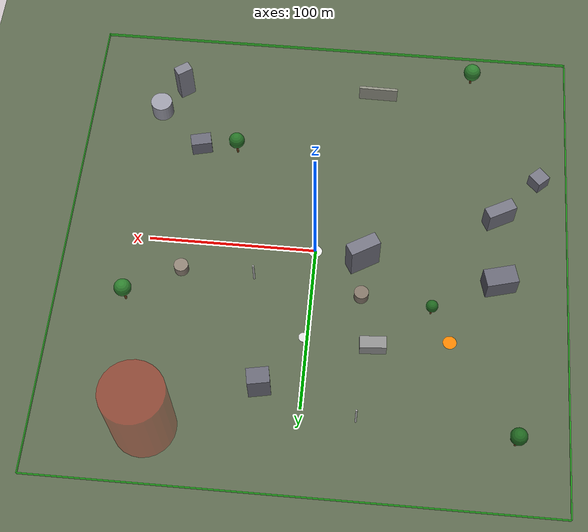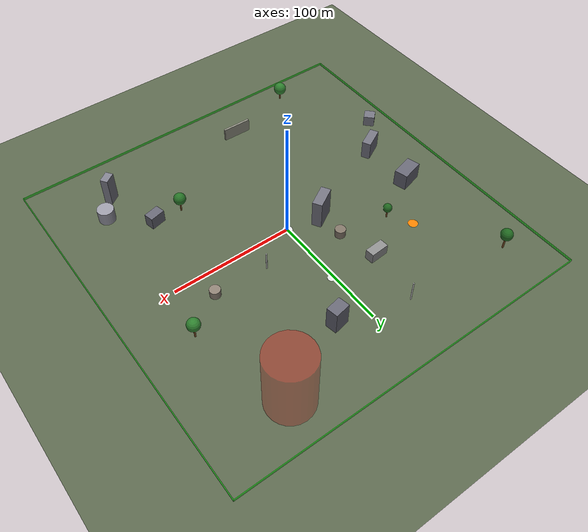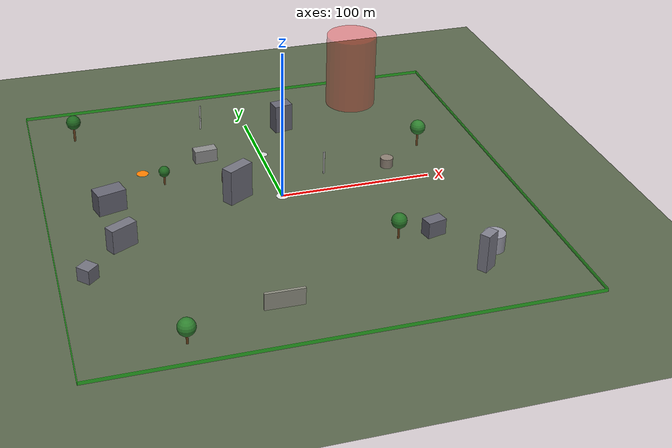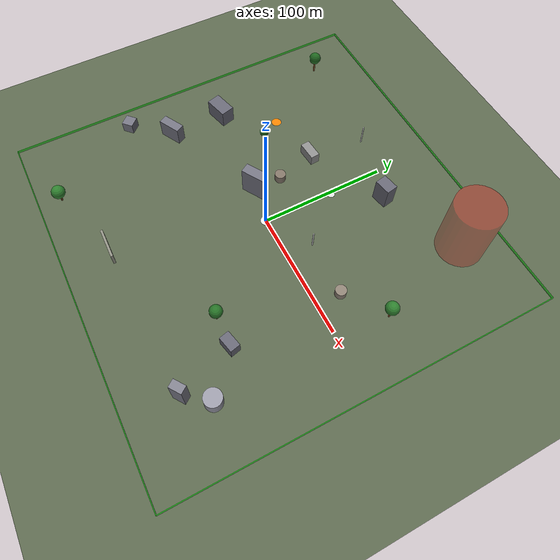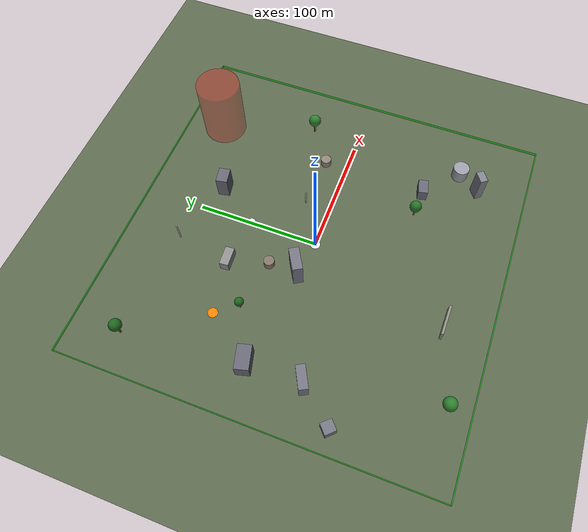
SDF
<?xml version="1.0" ?>
<sdf version="1.9">
  <!--
  Generated World: training_variant_003
  Seed: 45
  Difficulty: medium
  Obstacles: 19
  NFZs: 1
  Generated: 2025-12-27T10:39:35.536800
  Generator: Flyby F-11 World Generator v1.0.0
-->
  <world name="training_variant_003">
    <physics name="training_physics" type="ode">
      <max_step_size>0.001</max_step_size>
      <real_time_factor>1.0</real_time_factor>
      <real_time_update_rate>1000</real_time_update_rate>
      <ode>
        <solver>
          <type>quick</type>
          <iters>50</iters>
          <sor>1.3</sor>
        </solver>
        <constraints>
          <cfm>0.0</cfm>
          <erp>0.2</erp>
        </constraints>
      </ode>
    </physics>
    <plugin filename="gz-sim-physics-system" name="gz::sim::systems::Physics"/>
    <plugin filename="gz-sim-sensors-system" name="gz::sim::systems::Sensors">
      <render_engine>ogre2</render_engine>
    </plugin>
    <plugin filename="gz-sim-scene-broadcaster-system" name="gz::sim::systems::SceneBroadcaster"/>
    <plugin filename="gz-sim-user-commands-system" name="gz::sim::systems::UserCommands"/>
    <plugin filename="gz-sim-imu-system" name="gz::sim::systems::Imu"/>
    <plugin filename="gz-sim-air-pressure-system" name="gz::sim::systems::AirPressure"/>
    <plugin filename="gz-sim-magnetometer-system" name="gz::sim::systems::Magnetometer"/>
    <plugin filename="gz-sim-navsat-system" name="gz::sim::systems::NavSat"/>
    <plugin filename="gz-sim-contact-system" name="gz::sim::systems::Contact"/>
    <atmosphere type="adiabatic">
      <temperature>288.15</temperature>
      <pressure>101325</pressure>
      <mass_density>1.225</mass_density>
    </atmosphere>
    <spherical_coordinates>
      <surface_model>EARTH_WGS84</surface_model>
      <world_frame_orientation>ENU</world_frame_orientation>
      <latitude_deg>33.3853</latitude_deg>
      <longitude_deg>-117.5653</longitude_deg>
      <elevation>100</elevation>
      <heading_deg>0</heading_deg>
    </spherical_coordinates>
    <scene>
      <ambient>0.6 0.6 0.6 1</ambient>
      <background>0.7 0.8 0.9 1</background>
      <shadows>true</shadows>
      <grid>false</grid>
    </scene>
    <light type="directional" name="sun">
      <cast_shadows>true</cast_shadows>
      <pose>0 0 100 0 0 0</pose>
      <diffuse>0.8 0.8 0.8 1</diffuse>
      <specular>0.2 0.2 0.2 1</specular>
      <attenuation>
        <range>1000</range>
        <constant>0.9</constant>
        <linear>0.01</linear>
        <quadratic>0.001</quadratic>
      </attenuation>
      <direction>-0.5 0.1 -0.9</direction>
    </light>
    <model name="ground_plane">
      <static>true</static>
      <link name="link">
        <collision name="collision">
          <geometry>
            <plane>
              <normal>0 0 1</normal>
              <size>500 500</size>
            </plane>
          </geometry>
          <surface>
            <friction>
              <ode>
                <mu>100</mu>
                <mu2>50</mu2>
              </ode>
            </friction>
          </surface>
        </collision>
        <visual name="visual">
          <geometry>
            <plane>
              <normal>0 0 1</normal>
              <size>500 500</size>
            </plane>
          </geometry>
          <material>
            <ambient>0.35 0.4 0.3 1</ambient>
            <diffuse>0.35 0.4 0.3 1</diffuse>
          </material>
        </visual>
      </link>
    </model>
    <model name="geofence_north">
      <static>true</static>
      <pose>0 150.0 1 0 0 0</pose>
      <link name="link">
        <visual name="visual">
          <geometry>
            <box>
              <size>300.0 0.5 2</size>
            </box>
          </geometry>
          <material>
            <ambient>0 0.8 0 0.6</ambient>
            <diffuse>0 0.8 0 0.6</diffuse>
            <emissive>0 0.2 0 1</emissive>
          </material>
        </visual>
      </link>
    </model>
    <model name="geofence_south">
      <static>true</static>
      <pose>0 -150.0 1 0 0 0</pose>
      <link name="link">
        <visual name="visual">
          <geometry>
            <box>
              <size>300.0 0.5 2</size>
            </box>
          </geometry>
          <material>
            <ambient>0 0.8 0 0.6</ambient>
            <diffuse>0 0.8 0 0.6</diffuse>
            <emissive>0 0.2 0 1</emissive>
          </material>
        </visual>
      </link>
    </model>
    <model name="geofence_east">
      <static>true</static>
      <pose>150.0 0 1 0 0 0</pose>
      <link name="link">
        <visual name="visual">
          <geometry>
            <box>
              <size>0.5 300.0 2</size>
            </box>
          </geometry>
          <material>
            <ambient>0 0.8 0 0.6</ambient>
            <diffuse>0 0.8 0 0.6</diffuse>
            <emissive>0 0.2 0 1</emissive>
          </material>
        </visual>
      </link>
    </model>
    <model name="geofence_west">
      <static>true</static>
      <pose>-150.0 0 1 0 0 0</pose>
      <link name="link">
        <visual name="visual">
          <geometry>
            <box>
              <size>0.5 300.0 2</size>
            </box>
          </geometry>
          <material>
            <ambient>0 0.8 0 0.6</ambient>
            <diffuse>0 0.8 0 0.6</diffuse>
            <emissive>0 0.2 0 1</emissive>
          </material>
        </visual>
      </link>
    </model>
    <model name="nfz_2_volume">
      <static>true</static>
      <pose>84.84629304418972 117.40223314633944 26.801689996540162 0 0 0</pose>
      <link name="link">
        <visual name="visual">
          <geometry>
            <cylinder>
              <radius>18.010723286963053</radius>
              <length>53.603379993080324</length>
            </cylinder>
          </geometry>
          <material>
            <ambient>1 0 0 0.30000000000000004</ambient>
            <diffuse>1 0 0 0.30000000000000004</diffuse>
          </material>
        </visual>
      </link>
    </model>
    <model name="obstacle_building_0">
      <static>true</static>
      <pose>-132.4853802125854 -58.566064636894765 4.614835665495509 0 0 0.7511045215267736</pose>
      <link name="link">
        <visual name="visual">
          <geometry>
            <box>
              <size>8.982552108453998 9.048601382928627 9.229671330991017</size>
            </box>
          </geometry>
          <material>
            <ambient>0.45 0.45 0.5 1.0</ambient>
            <diffuse>0.45 0.45 0.5 1.0</diffuse>
          </material>
        </visual>
        <collision name="collision">
          <geometry>
            <box>
              <size>8.982552108453998 9.048601382928627 9.229671330991017</size>
            </box>
          </geometry>
        </collision>
      </link>
    </model>
    <model name="obstacle_tank_1">
      <static>true</static>
      <pose>105.67778842123028 -92.28186687182432 5.697383760473226 0 0 0.0</pose>
      <link name="link">
        <visual name="visual">
          <geometry>
            <cylinder>
              <radius>6.597216279380193</radius>
              <length>11.394767520946452</length>
            </cylinder>
          </geometry>
          <material>
            <ambient>0.6 0.6 0.65 1.0</ambient>
            <diffuse>0.6 0.6 0.65 1.0</diffuse>
          </material>
        </visual>
        <collision name="collision">
          <geometry>
            <cylinder>
              <radius>6.597216279380193</radius>
              <length>11.394767520946452</length>
            </cylinder>
          </geometry>
        </collision>
      </link>
    </model>
    <model name="obstacle_building_2">
      <static>true</static>
      <pose>-37.96636028463146 59.59614576843825 4.486145528742261 0 0 0.07363469655935773</pose>
      <link name="link">
        <visual name="visual">
          <geometry>
            <box>
              <size>15.355012244713132 7.285249295115916 8.972291057484522</size>
            </box>
          </geometry>
          <material>
            <ambient>0.55 0.55 0.55 1.0</ambient>
            <diffuse>0.55 0.55 0.55 1.0</diffuse>
          </material>
        </visual>
        <collision name="collision">
          <geometry>
            <box>
              <size>15.355012244713132 7.285249295115916 8.972291057484522</size>
            </box>
          </geometry>
        </collision>
      </link>
    </model>
    <model name="obstacle_pole_3">
      <static>true</static>
      <pose>-31.464657396278028 104.58215073355495 9.084946579630866 0 0 0.0</pose>
      <link name="link">
        <visual name="visual">
          <geometry>
            <cylinder>
              <radius>0.5253538153957699</radius>
              <length>18.169893159261733</length>
            </cylinder>
          </geometry>
          <material>
            <ambient>0.75 0.75 0.75 1.0</ambient>
            <diffuse>0.75 0.75 0.75 1.0</diffuse>
          </material>
        </visual>
        <collision name="collision">
          <geometry>
            <cylinder>
              <radius>0.5253538153957699</radius>
              <length>18.169893159261733</length>
            </cylinder>
          </geometry>
        </collision>
      </link>
    </model>
    <model name="obstacle_tree_4">
      <static>true</static>
      <pose>54.635260351853276 -66.39473231354962 0 0 0 0.0</pose>
      <link name="link">
        <visual name="trunk">
          <pose>0 0 4.862805779507359 0 0 0</pose>
          <geometry>
            <cylinder>
              <radius>0.6610613670967191</radius>
              <length>9.725611559014718</length>
            </cylinder>
          </geometry>
          <material>
            <ambient>0.4 0.25 0.1 1.0</ambient>
            <diffuse>0.4 0.25 0.1 1.0</diffuse>
          </material>
        </visual>
        <visual name="canopy">
          <pose>0 0 12.663328203403744 0 0 0</pose>
          <geometry>
            <sphere>
              <radius>4.896194407315042</radius>
            </sphere>
          </geometry>
          <material>
            <ambient>0.15 0.45 0.15 1.0</ambient>
            <diffuse>0.15 0.45 0.15 1.0</diffuse>
          </material>
        </visual>
        <collision name="collision">
          <pose>0 0 9.759000186822401 0 0 0</pose>
          <geometry>
            <cylinder>
              <radius>4.896194407315042</radius>
              <length>19.518000373644803</length>
            </cylinder>
          </geometry>
        </collision>
      </link>
    </model>
    <model name="obstacle_building_5">
      <static>true</static>
      <pose>77.20636600943718 -66.96695217310672 5.325608814686121 0 0 0.23073764931470872</pose>
      <link name="link">
        <visual name="visual">
          <geometry>
            <box>
              <size>12.484161369064244 7.887020834997979 10.651217629372242</size>
            </box>
          </geometry>
          <material>
            <ambient>0.4 0.4 0.45 1.0</ambient>
            <diffuse>0.4 0.4 0.45 1.0</diffuse>
          </material>
        </visual>
        <collision name="collision">
          <geometry>
            <box>
              <size>12.484161369064244 7.887020834997979 10.651217629372242</size>
            </box>
          </geometry>
        </collision>
      </link>
    </model>
    <model name="obstacle_building_6">
      <static>true</static>
      <pose>-108.36004645897268 -30.27960080092869 7.871463840545675 0 0 0.49028710411302373</pose>
      <link name="link">
        <visual name="visual">
          <geometry>
            <box>
              <size>18.025308136346393 7.290900433504769 15.74292768109135</size>
            </box>
          </geometry>
          <material>
            <ambient>0.45 0.45 0.5 1.0</ambient>
            <diffuse>0.45 0.45 0.5 1.0</diffuse>
          </material>
        </visual>
        <collision name="collision">
          <geometry>
            <box>
              <size>18.025308136346393 7.290900433504769 15.74292768109135</size>
            </box>
          </geometry>
        </collision>
      </link>
    </model>
    <model name="obstacle_tree_7">
      <static>true</static>
      <pose>-89.39070004425257 -131.98121248509932 0 0 0 0.0</pose>
      <link name="link">
        <visual name="trunk">
          <pose>0 0 3.954734496046126 0 0 0</pose>
          <geometry>
            <cylinder>
              <radius>0.6890848514151946</radius>
              <length>7.909468992092252</length>
            </cylinder>
          </geometry>
          <material>
            <ambient>0.4 0.25 0.1 1.0</ambient>
            <diffuse>0.4 0.25 0.1 1.0</diffuse>
          </material>
        </visual>
        <visual name="canopy">
          <pose>0 0 11.098375497194427 0 0 0</pose>
          <geometry>
            <sphere>
              <radius>5.3148441751702915</radius>
            </sphere>
          </geometry>
          <material>
            <ambient>0.18 0.5 0.18 1.0</ambient>
            <diffuse>0.18 0.5 0.18 1.0</diffuse>
          </material>
        </visual>
        <collision name="collision">
          <pose>0 0 9.269578671216419 0 0 0</pose>
          <geometry>
            <cylinder>
              <radius>5.3148441751702915</radius>
              <length>18.539157342432837</length>
            </cylinder>
          </geometry>
        </collision>
      </link>
    </model>
    <model name="obstacle_pole_8">
      <static>true</static>
      <pose>34.45206419751821 21.078602915329014 8.013724312296088 0 0 0.0</pose>
      <link name="link">
        <visual name="visual">
          <geometry>
            <cylinder>
              <radius>0.5834440645590364</radius>
              <length>16.027448624592175</length>
            </cylinder>
          </geometry>
          <material>
            <ambient>0.7 0.7 0.7 1.0</ambient>
            <diffuse>0.7 0.7 0.7 1.0</diffuse>
          </material>
        </visual>
        <collision name="collision">
          <geometry>
            <cylinder>
              <radius>0.5834440645590364</radius>
              <length>16.027448624592175</length>
            </cylinder>
          </geometry>
        </collision>
      </link>
    </model>
    <model name="obstacle_tree_9">
      <static>true</static>
      <pose>-70.29387487716951 34.798174918573636 0 0 0 0.0</pose>
      <link name="link">
        <visual name="trunk">
          <pose>0 0 3.8121261515824445 0 0 0</pose>
          <geometry>
            <cylinder>
              <radius>0.6364779437462831</radius>
              <length>7.624252303164889</length>
            </cylinder>
          </geometry>
          <material>
            <ambient>0.42 0.27 0.12 1.0</ambient>
            <diffuse>0.42 0.27 0.12 1.0</diffuse>
          </material>
        </visual>
        <visual name="canopy">
          <pose>0 0 9.785127692091415 0 0 0</pose>
          <geometry>
            <sphere>
              <radius>3.601458981544208</radius>
            </sphere>
          </geometry>
          <material>
            <ambient>0.12 0.4 0.12 1.0</ambient>
            <diffuse>0.12 0.4 0.12 1.0</diffuse>
          </material>
        </visual>
        <collision name="collision">
          <pose>0 0 7.413585133126652 0 0 0</pose>
          <geometry>
            <cylinder>
              <radius>3.601458981544208</radius>
              <length>14.827170266253304</length>
            </cylinder>
          </geometry>
        </collision>
      </link>
    </model>
    <model name="obstacle_building_10">
      <static>true</static>
      <pose>93.03734702638491 -109.41455604067868 12.24534300143122 0 0 0.6165971843680158</pose>
      <link name="link">
        <visual name="visual">
          <geometry>
            <box>
              <size>9.784176199928282 6.204310270983402 24.49068600286244</size>
            </box>
          </geometry>
          <material>
            <ambient>0.5 0.5 0.55 1.0</ambient>
            <diffuse>0.5 0.5 0.55 1.0</diffuse>
          </material>
        </visual>
        <collision name="collision">
          <geometry>
            <box>
              <size>9.784176199928282 6.204310270983402 24.49068600286244</size>
            </box>
          </geometry>
        </collision>
      </link>
    </model>
    <model name="obstacle_tank_11">
      <static>true</static>
      <pose>-29.26159080283719 27.90408165216658 3.3968214015220592 0 0 0.0</pose>
      <link name="link">
        <visual name="visual">
          <geometry>
            <cylinder>
              <radius>4.258672854080244</radius>
              <length>6.7936428030441185</length>
            </cylinder>
          </geometry>
          <material>
            <ambient>0.5 0.45 0.4 1.0</ambient>
            <diffuse>0.5 0.45 0.4 1.0</diffuse>
          </material>
        </visual>
        <collision name="collision">
          <geometry>
            <cylinder>
              <radius>4.258672854080244</radius>
              <length>6.7936428030441185</length>
            </cylinder>
          </geometry>
        </collision>
      </link>
    </model>
    <model name="obstacle_tree_12">
      <static>true</static>
      <pose>108.00311081991208 40.374193061943515 0 0 0 0.0</pose>
      <link name="link">
        <visual name="trunk">
          <pose>0 0 5.568275254570514 0 0 0</pose>
          <geometry>
            <cylinder>
              <radius>0.6981768364191323</radius>
              <length>11.136550509141028</length>
            </cylinder>
          </geometry>
          <material>
            <ambient>0.42 0.27 0.12 1.0</ambient>
            <diffuse>0.42 0.27 0.12 1.0</diffuse>
          </material>
        </visual>
        <visual name="canopy">
          <pose>0 0 14.21116351707551 0 0 0</pose>
          <geometry>
            <sphere>
              <radius>5.124355013224137</radius>
            </sphere>
          </geometry>
          <material>
            <ambient>0.18 0.5 0.18 1.0</ambient>
            <diffuse>0.18 0.5 0.18 1.0</diffuse>
          </material>
        </visual>
        <collision name="collision">
          <pose>0 0 10.692630267794652 0 0 0</pose>
          <geometry>
            <cylinder>
              <radius>5.124355013224137</radius>
              <length>21.385260535589303</length>
            </cylinder>
          </geometry>
        </collision>
      </link>
    </model>
    <model name="obstacle_building_13">
      <static>true</static>
      <pose>24.048819151084018 89.64694740526062 10.03379512553614 0 0 0.18382503877114287</pose>
      <link name="link">
        <visual name="visual">
          <geometry>
            <box>
              <size>12.826820184404367 9.394580673171061 20.06759025107228</size>
            </box>
          </geometry>
          <material>
            <ambient>0.4 0.4 0.45 1.0</ambient>
            <diffuse>0.4 0.4 0.45 1.0</diffuse>
          </material>
        </visual>
        <collision name="collision">
          <geometry>
            <box>
              <size>12.826820184404367 9.394580673171061 20.06759025107228</size>
            </box>
          </geometry>
        </collision>
      </link>
    </model>
    <model name="obstacle_building_14">
      <static>true</static>
      <pose>-28.286994103372948 5.299822834765479 12.108413655200758 0 0 0.5349841115648459</pose>
      <link name="link">
        <visual name="visual">
          <geometry>
            <box>
              <size>18.6345789946365 7.942127051326326 24.216827310401516</size>
            </box>
          </geometry>
          <material>
            <ambient>0.45 0.45 0.5 1.0</ambient>
            <diffuse>0.45 0.45 0.5 1.0</diffuse>
          </material>
        </visual>
        <collision name="collision">
          <geometry>
            <box>
              <size>18.6345789946365 7.942127051326326 24.216827310401516</size>
            </box>
          </geometry>
        </collision>
      </link>
    </model>
    <model name="obstacle_tree_15">
      <static>true</static>
      <pose>-119.7517081678857 110.40593423033025 0 0 0 0.0</pose>
      <link name="link">
        <visual name="trunk">
          <pose>0 0 5.748728077122657 0 0 0</pose>
          <geometry>
            <cylinder>
              <radius>0.7602681000133187</radius>
              <length>11.497456154245315</length>
            </cylinder>
          </geometry>
          <material>
            <ambient>0.42 0.27 0.12 1.0</ambient>
            <diffuse>0.42 0.27 0.12 1.0</diffuse>
          </material>
        </visual>
        <visual name="canopy">
          <pose>0 0 14.450158060667336 0 0 0</pose>
          <geometry>
            <sphere>
              <radius>4.921169844036703</radius>
            </sphere>
          </geometry>
          <material>
            <ambient>0.12 0.4 0.12 1.0</ambient>
            <diffuse>0.12 0.4 0.12 1.0</diffuse>
          </material>
        </visual>
        <collision name="collision">
          <pose>0 0 10.669897921159361 0 0 0</pose>
          <geometry>
            <cylinder>
              <radius>4.921169844036703</radius>
              <length>21.339795842318722</length>
            </cylinder>
          </geometry>
        </collision>
      </link>
    </model>
    <model name="obstacle_tank_16">
      <static>true</static>
      <pose>77.98583872437524 19.050824931137186 3.2562760998591265 0 0 0.0</pose>
      <link name="link">
        <visual name="visual">
          <geometry>
            <cylinder>
              <radius>4.247446508682668</radius>
              <length>6.512552199718253</length>
            </cylinder>
          </geometry>
          <material>
            <ambient>0.55 0.5 0.45 1.0</ambient>
            <diffuse>0.55 0.5 0.45 1.0</diffuse>
          </material>
        </visual>
        <collision name="collision">
          <geometry>
            <cylinder>
              <radius>4.247446508682668</radius>
              <length>6.512552199718253</length>
            </cylinder>
          </geometry>
        </collision>
      </link>
    </model>
    <model name="obstacle_wall_17">
      <static>true</static>
      <pose>-30.444127039906192 -114.33083944469358 5.515506655565012 0 0 3.1262550613760394</pose>
      <link name="link">
        <visual name="visual">
          <geometry>
            <box>
              <size>24.12660909258937 1.8031014913790009 11.031013311130025</size>
            </box>
          </geometry>
          <material>
            <ambient>0.55 0.55 0.5 1.0</ambient>
            <diffuse>0.55 0.55 0.5 1.0</diffuse>
          </material>
        </visual>
        <collision name="collision">
          <geometry>
            <box>
              <size>24.12660909258937 1.8031014913790009 11.031013311130025</size>
            </box>
          </geometry>
        </collision>
      </link>
    </model>
    <model name="obstacle_building_18">
      <static>true</static>
      <pose>-109.25636018872119 14.048726245481987 7.274730984805067 0 0 0.25747375878969087</pose>
      <link name="link">
        <visual name="visual">
          <geometry>
            <box>
              <size>18.791654501364228 11.091584402260317 14.549461969610133</size>
            </box>
          </geometry>
          <material>
            <ambient>0.4 0.4 0.45 1.0</ambient>
            <diffuse>0.4 0.4 0.45 1.0</diffuse>
          </material>
        </visual>
        <collision name="collision">
          <geometry>
            <box>
              <size>18.791654501364228 11.091584402260317 14.549461969610133</size>
            </box>
          </geometry>
        </collision>
      </link>
    </model>
    <model name="lz_primary">
      <static>true</static>
      <pose>0 0 0.02 0 0 0</pose>
      <link name="link">
        <visual name="pad">
          <geometry>
            <cylinder>
              <radius>4.0</radius>
              <length>0.04</length>
            </cylinder>
          </geometry>
          <material>
            <ambient>0.9 0.9 0.9 1</ambient>
            <diffuse>0.9 0.9 0.9 1</diffuse>
          </material>
        </visual>
        <visual name="H_v">
          <pose>0 0 0.02 0 0 0</pose>
          <geometry>
            <box>
              <size>0.6 2.5 0.01</size>
            </box>
          </geometry>
          <material>
            <ambient>0 0 0.8 1</ambient>
            <diffuse>0 0 0.8 1</diffuse>
          </material>
        </visual>
        <visual name="H_h">
          <pose>0 0 0.02 0 0 0</pose>
          <geometry>
            <box>
              <size>2.5 0.6 0.01</size>
            </box>
          </geometry>
          <material>
            <ambient>0 0 0.8 1</ambient>
            <diffuse>0 0 0.8 1</diffuse>
          </material>
        </visual>
      </link>
    </model>
    <model name="lz_secondary">
      <static>true</static>
      <pose>1.977376870359592 56.34671394380203 0.02 0 0 0</pose>
      <link name="link">
        <visual name="pad">
          <geometry>
            <cylinder>
              <radius>3.0</radius>
              <length>0.04</length>
            </cylinder>
          </geometry>
          <material>
            <ambient>0.85 0.85 0.85 1</ambient>
            <diffuse>0.85 0.85 0.85 1</diffuse>
          </material>
        </visual>
      </link>
    </model>
    <model name="lz_emergency">
      <static>true</static>
      <pose>-82.04952175169869 52.48669899137431 0.02 0 0 0</pose>
      <link name="link">
        <visual name="pad">
          <geometry>
            <cylinder>
              <radius>4.0</radius>
              <length>0.04</length>
            </cylinder>
          </geometry>
          <material>
            <ambient>1 0.5 0 1</ambient>
            <diffuse>1 0.5 0 1</diffuse>
          </material>
        </visual>
      </link>
    </model>
    <include>
      <uri>model://iris_with_ardupilot</uri>
      <name>iris</name>
      <pose>0 0 0.5 0 0 0</pose>
    </include>
  </world>
</sdf>

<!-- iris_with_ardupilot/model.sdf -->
<sdf version="1.9">
  <model name="iris_with_ardupilot">
    <pose>0 0 0.2 0 0 0</pose>

    <link name="base_link">
      <inertial>
        <mass>1.5</mass>
        <inertia>
          <ixx>0.029125</ixx>
          <ixy>0</ixy>
          <ixz>0</ixz>
          <iyy>0.029125</iyy>
          <iyz>0</iyz>
          <izz>0.055225</izz>
        </inertia>
      </inertial>

      <visual name="body_visual">
        <geometry>
          <box>
            <size>0.47 0.47 0.11</size>
          </box>
        </geometry>
        <material>
          <ambient>0.2 0.2 0.2 1</ambient>
          <diffuse>0.2 0.2 0.2 1</diffuse>
        </material>
      </visual>

      <!-- Center marker for orientation (green = forward) -->
      <visual name="center_marker">
        <pose>0.15 0 0 0 0 0</pose>
        <geometry>
          <sphere>
            <radius>0.05</radius>
          </sphere>
        </geometry>
        <material>
          <ambient>0 1 0 1</ambient>
          <diffuse>0 1 0 1</diffuse>
        </material>
      </visual>

      <collision name="collision">
        <geometry>
          <box>
            <size>0.47 0.47 0.11</size>
          </box>
        </geometry>
      </collision>

      <!-- GPS/NavSat Sensor                -->
      <!-- Consumer-grade GPS accuracy      -->
      <sensor name="navsat_sensor" type="navsat">
        <always_on>1</always_on>
        <update_rate>10</update_rate>
        <topic>gps</topic>
        <navsat>
          <position_sensing>
            <horizontal>
              <noise type="gaussian">
                <mean>0.0</mean>
                <stddev>0.5</stddev>
              </noise>
            </horizontal>
            <vertical>
              <noise type="gaussian">
                <mean>0.0</mean>
                <stddev>1.0</stddev>
              </noise>
            </vertical>
          </position_sensing>
          <velocity_sensing>
            <horizontal>
              <noise type="gaussian">
                <mean>0.0</mean>
                <stddev>0.05</stddev>
              </noise>
            </horizontal>
            <vertical>
              <noise type="gaussian">
                <mean>0.0</mean>
                <stddev>0.1</stddev>
              </noise>
            </vertical>
          </velocity_sensing>
        </navsat>
      </sensor>

      <!-- Magnetometer Sensor              -->
      <!-- Earth magnetic field sensing     -->
      <!-- Declination: ~11.5 deg E (San Diego) -->
      <sensor name="magnetometer_sensor" type="magnetometer">
        <always_on>1</always_on>
        <update_rate>50</update_rate>
        <topic>magnetometer</topic>
        <magnetometer>
          <x>
            <noise type="gaussian">
              <mean>0</mean>
              <stddev>0.001</stddev>
              <bias_mean>0.00001</bias_mean>
              <bias_stddev>0.000002</bias_stddev>
            </noise>
          </x>
          <y>
            <noise type="gaussian">
              <mean>0</mean>
              <stddev>0.001</stddev>
              <bias_mean>0.00001</bias_mean>
              <bias_stddev>0.000002</bias_stddev>
            </noise>
          </y>
          <z>
            <noise type="gaussian">
              <mean>0</mean>
              <stddev>0.001</stddev>
              <bias_mean>0.00001</bias_mean>
              <bias_stddev>0.000002</bias_stddev>
            </noise>
          </z>
        </magnetometer>
      </sensor>

      <!-- Barometer Sensor                 -->
      <!-- Atmospheric pressure sensing     -->
      <!-- ~8.3 Pa per meter at sea level   -->
      <sensor name="air_pressure_sensor" type="air_pressure">
        <always_on>1</always_on>
        <update_rate>20</update_rate>
        <topic>air_pressure</topic>
        <air_pressure>
          <reference_altitude>0</reference_altitude>
          <pressure>
            <noise type="gaussian">
              <mean>0</mean>
              <stddev>10</stddev>
            </noise>
          </pressure>
        </air_pressure>
      </sensor>

    </link>

    <!-- Rotor 0 (Front Right, CW)        -->
    <link name="rotor_0">
      <pose>0.13 -0.22 0.023 0 0 0</pose>
      <inertial>
        <mass>0.005</mass>
        <inertia>
          <ixx>9.75e-07</ixx>
          <ixy>0</ixy>
          <ixz>0</ixz>
          <iyy>0.000166704</iyy>
          <iyz>0</iyz>
          <izz>0.000167604</izz>
        </inertia>
      </inertial>
      <visual name="visual">
        <geometry>
          <cylinder>
            <radius>0.128</radius>
            <length>0.005</length>
          </cylinder>
        </geometry>
        <material>
          <ambient>1 0 0 1</ambient>
          <diffuse>1 0 0 1</diffuse>
        </material>
      </visual>
    </link>

    <!-- Rotor 1 (Back Left, CW)          -->
    <link name="rotor_1">
      <pose>-0.13 0.2 0.023 0 0 0</pose>
      <inertial>
        <mass>0.005</mass>
        <inertia>
          <ixx>9.75e-07</ixx>
          <ixy>0</ixy>
          <ixz>0</ixz>
          <iyy>0.000166704</iyy>
          <iyz>0</iyz>
          <izz>0.000167604</izz>
        </inertia>
      </inertial>
      <visual name="visual">
        <geometry>
          <cylinder>
            <radius>0.128</radius>
            <length>0.005</length>
          </cylinder>
        </geometry>
        <material>
          <ambient>1 0 0 1</ambient>
          <diffuse>1 0 0 1</diffuse>
        </material>
      </visual>
    </link>

    <!-- Rotor 2 (Front Left, CCW)        -->
    <link name="rotor_2">
      <pose>0.13 0.22 0.023 0 0 0</pose>
      <inertial>
        <mass>0.005</mass>
        <inertia>
          <ixx>9.75e-07</ixx>
          <ixy>0</ixy>
          <ixz>0</ixz>
          <iyy>0.000166704</iyy>
          <iyz>0</iyz>
          <izz>0.000167604</izz>
        </inertia>
      </inertial>
      <visual name="visual">
        <geometry>
          <cylinder>
            <radius>0.128</radius>
            <length>0.005</length>
          </cylinder>
        </geometry>
        <material>
          <ambient>0 0 1 1</ambient>
          <diffuse>0 0 1 1</diffuse>
        </material>
      </visual>
    </link>

    <!-- Rotor 3 (Back Right, CCW)        -->
    <link name="rotor_3">
      <pose>-0.13 -0.2 0.023 0 0 0</pose>
      <inertial>
        <mass>0.005</mass>
        <inertia>
          <ixx>9.75e-07</ixx>
          <ixy>0</ixy>
          <ixz>0</ixz>
          <iyy>0.000166704</iyy>
          <iyz>0</iyz>
          <izz>0.000167604</izz>
        </inertia>
      </inertial>
      <visual name="visual">
        <geometry>
          <cylinder>
            <radius>0.128</radius>
            <length>0.005</length>
          </cylinder>
        </geometry>
        <material>
          <ambient>0 0 1 1</ambient>
          <diffuse>0 0 1 1</diffuse>
        </material>
      </visual>
    </link>

    <!-- Rotor joints -->
    <joint name="rotor_0_joint" type="revolute">
      <parent>base_link</parent>
      <child>rotor_0</child>
      <axis>
        <xyz>0 0 1</xyz>
        <limit>
          <lower>-1e16</lower>
          <upper>1e16</upper>
        </limit>
      </axis>
    </joint>

    <joint name="rotor_1_joint" type="revolute">
      <parent>base_link</parent>
      <child>rotor_1</child>
      <axis>
        <xyz>0 0 1</xyz>
        <limit>
          <lower>-1e16</lower>
          <upper>1e16</upper>
        </limit>
      </axis>
    </joint>

    <joint name="rotor_2_joint" type="revolute">
      <parent>base_link</parent>
      <child>rotor_2</child>
      <axis>
        <xyz>0 0 1</xyz>
        <limit>
          <lower>-1e16</lower>
          <upper>1e16</upper>
        </limit>
      </axis>
    </joint>

    <joint name="rotor_3_joint" type="revolute">
      <parent>base_link</parent>
      <child>rotor_3</child>
      <axis>
        <xyz>0 0 1</xyz>
        <limit>
          <lower>-1e16</lower>
          <upper>1e16</upper>
        </limit>
      </axis>
    </joint>

    <!-- IMU Sensor Link                  -->
    <!-- 250Hz MEMS IMU with noise        -->
    <link name="imu_link">
      <pose>0 0 0 0 0 0</pose>
      <inertial>
        <mass>0.001</mass>
        <inertia>
          <ixx>1e-05</ixx>
          <ixy>0</ixy>
          <ixz>0</ixz>
          <iyy>1e-05</iyy>
          <iyz>0</iyz>
          <izz>1e-05</izz>
        </inertia>
      </inertial>
      <sensor name="imu_sensor" type="imu">
        <always_on>1</always_on>
        <update_rate>250</update_rate>
        <topic>imu</topic>
        <imu>
          <angular_velocity>
            <x>
              <noise type="gaussian">
                <mean>0</mean>
                <stddev>0.009</stddev>
                <bias_mean>0.0001</bias_mean>
                <bias_stddev>0.00002</bias_stddev>
              </noise>
            </x>
            <y>
              <noise type="gaussian">
                <mean>0</mean>
                <stddev>0.009</stddev>
                <bias_mean>0.0001</bias_mean>
                <bias_stddev>0.00002</bias_stddev>
              </noise>
            </y>
            <z>
              <noise type="gaussian">
                <mean>0</mean>
                <stddev>0.009</stddev>
                <bias_mean>0.0001</bias_mean>
                <bias_stddev>0.00002</bias_stddev>
              </noise>
            </z>
          </angular_velocity>
          <linear_acceleration>
            <x>
              <noise type="gaussian">
                <mean>0</mean>
                <stddev>0.017</stddev>
                <bias_mean>0.001</bias_mean>
                <bias_stddev>0.0002</bias_stddev>
              </noise>
            </x>
            <y>
              <noise type="gaussian">
                <mean>0</mean>
                <stddev>0.017</stddev>
                <bias_mean>0.001</bias_mean>
                <bias_stddev>0.0002</bias_stddev>
              </noise>
            </y>
            <z>
              <noise type="gaussian">
                <mean>0</mean>
                <stddev>0.017</stddev>
                <bias_mean>0.001</bias_mean>
                <bias_stddev>0.0002</bias_stddev>
              </noise>
            </z>
          </linear_acceleration>
        </imu>
      </sensor>
    </link>

    <joint name="imu_joint" type="fixed">
      <parent>base_link</parent>
      <child>imu_link</child>
    </joint>

    <!-- Rangefinder Link                 -->
    <!-- Downward-facing lidar for AGL    -->
    <link name="rangefinder_link">
      <pose>0 0 -0.05 0 0 0</pose>
      <inertial>
        <mass>0.01</mass>
        <inertia>
          <ixx>1e-05</ixx>
          <ixy>0</ixy>
          <ixz>0</ixz>
          <iyy>1e-05</iyy>
          <iyz>0</iyz>
          <izz>1e-05</izz>
        </inertia>
      </inertial>
      <visual name="visual">
        <geometry>
          <cylinder>
            <radius>0.01</radius>
            <length>0.02</length>
          </cylinder>
        </geometry>
        <material>
          <ambient>0.5 0.5 0.5 1</ambient>
          <diffuse>0.5 0.5 0.5 1</diffuse>
        </material>
      </visual>
      <sensor name="rangefinder" type="gpu_lidar">
        <!-- Pointing straight down (pitch = -90 deg = -1.5708 rad) -->
        <pose>0 0 0 0 1.5708 0</pose>
        <always_on>1</always_on>
        <update_rate>20</update_rate>
        <topic>rangefinder</topic>
        <ray>
          <scan>
            <horizontal>
              <samples>1</samples>
              <resolution>1</resolution>
              <min_angle>0</min_angle>
              <max_angle>0</max_angle>
            </horizontal>
            <vertical>
              <samples>1</samples>
              <resolution>1</resolution>
              <min_angle>0</min_angle>
              <max_angle>0</max_angle>
            </vertical>
          </scan>
          <range>
            <min>0.1</min>
            <max>40.0</max>
            <resolution>0.01</resolution>
          </range>
          <noise>
            <type>gaussian</type>
            <mean>0</mean>
            <stddev>0.02</stddev>
          </noise>
        </ray>
        <visualize>false</visualize>
      </sensor>
    </link>

    <joint name="rangefinder_joint" type="fixed">
      <parent>base_link</parent>
      <child>rangefinder_link</child>
    </joint>

    <!-- ArduPilot Plugin                 -->
    <plugin filename="ArduPilotPlugin" name="ArduPilotPlugin">
      <!-- Network Configuration -->
      <fdm_addr>127.0.0.1</fdm_addr>
      <fdm_port_in>9002</fdm_port_in>
      <fdm_port_out>9003</fdm_port_out>
      <connectionTimeoutMaxCount>5</connectionTimeoutMaxCount>

      <!-- Simulation Settings -->
      <lock_step>1</lock_step>
      <have_32_channels>0</have_32_channels>

      <!-- Coordinate Transforms -->
      <modelXYZToAirplaneXForwardZDown>0 0 0 3.141593 0 0</modelXYZToAirplaneXForwardZDown>
      <gazeboXYZToNED>0 0 0 3.141593 0 0</gazeboXYZToNED>

      <!-- Sensor Reference -->
      <imuName>imu_link::imu_sensor</imuName>

      <!-- Control Channel 0: Front Right (CW) -->
      <control channel="0">
        <jointName>rotor_0_joint</jointName>
        <useForce>1</useForce>
        <multiplier>838</multiplier>
        <offset>-0.5</offset>
        <servo_min>1000</servo_min>
        <servo_max>2000</servo_max>
        <type>VELOCITY</type>
        <p_gain>0.20</p_gain>
        <i_gain>0</i_gain>
        <d_gain>0</d_gain>
        <i_max>0</i_max>
        <i_min>0</i_min>
        <cmd_max>2.5</cmd_max>
        <cmd_min>-2.5</cmd_min>
      </control>

      <!-- Control Channel 1: Back Left (CW) -->
      <control channel="1">
        <jointName>rotor_1_joint</jointName>
        <useForce>1</useForce>
        <multiplier>838</multiplier>
        <offset>-0.5</offset>
        <servo_min>1000</servo_min>
        <servo_max>2000</servo_max>
        <type>VELOCITY</type>
        <p_gain>0.20</p_gain>
        <i_gain>0</i_gain>
        <d_gain>0</d_gain>
        <i_max>0</i_max>
        <i_min>0</i_min>
        <cmd_max>2.5</cmd_max>
        <cmd_min>-2.5</cmd_min>
      </control>

      <!-- Control Channel 2: Front Left (CCW) -->
      <control channel="2">
        <jointName>rotor_2_joint</jointName>
        <useForce>1</useForce>
        <multiplier>838</multiplier>
        <offset>-0.5</offset>
        <servo_min>1000</servo_min>
        <servo_max>2000</servo_max>
        <type>VELOCITY</type>
        <p_gain>0.20</p_gain>
        <i_gain>0</i_gain>
        <d_gain>0</d_gain>
        <i_max>0</i_max>
        <i_min>0</i_min>
        <cmd_max>2.5</cmd_max>
        <cmd_min>-2.5</cmd_min>
      </control>

      <!-- Control Channel 3: Back Right (CCW) -->
      <control channel="3">
        <jointName>rotor_3_joint</jointName>
        <useForce>1</useForce>
        <multiplier>838</multiplier>
        <offset>-0.5</offset>
        <servo_min>1000</servo_min>
        <servo_max>2000</servo_max>
        <type>VELOCITY</type>
        <p_gain>0.20</p_gain>
        <i_gain>0</i_gain>
        <d_gain>0</d_gain>
        <i_max>0</i_max>
        <i_min>0</i_min>
        <cmd_max>2.5</cmd_max>
        <cmd_min>-2.5</cmd_min>
      </control>
    </plugin>

  </model>
</sdf>
